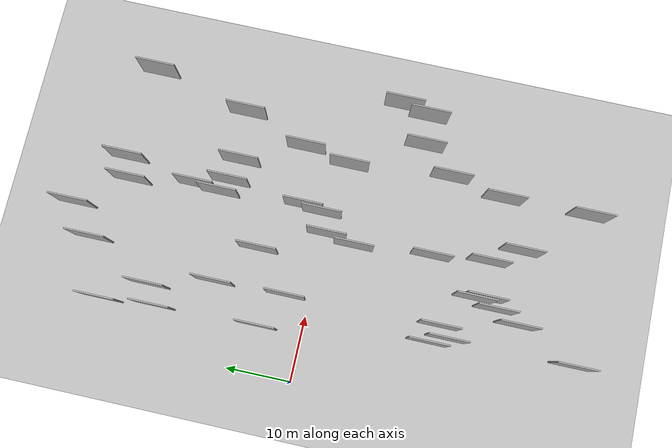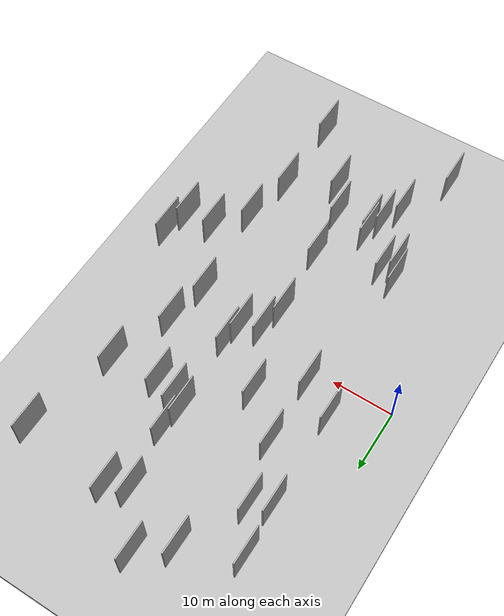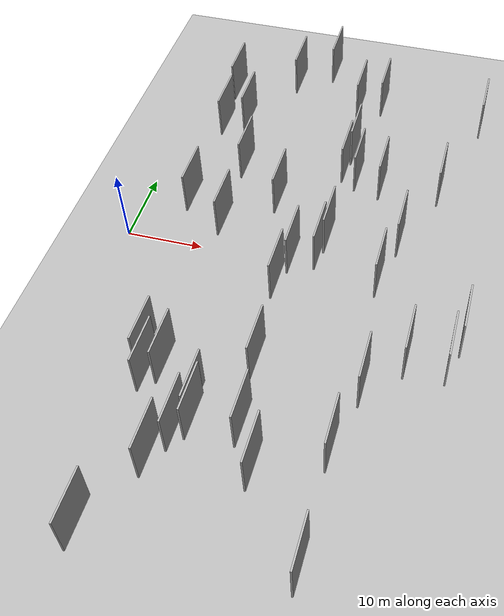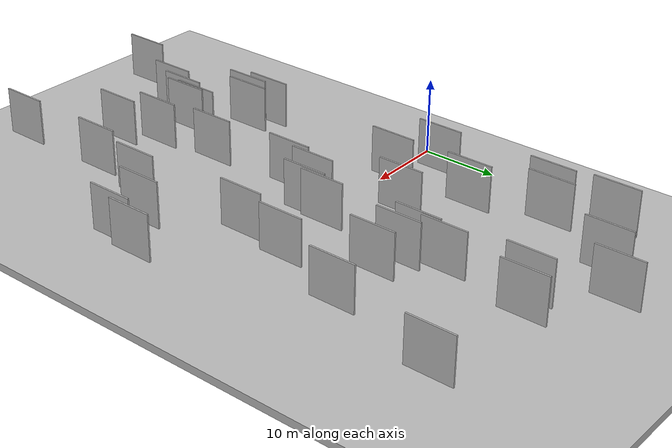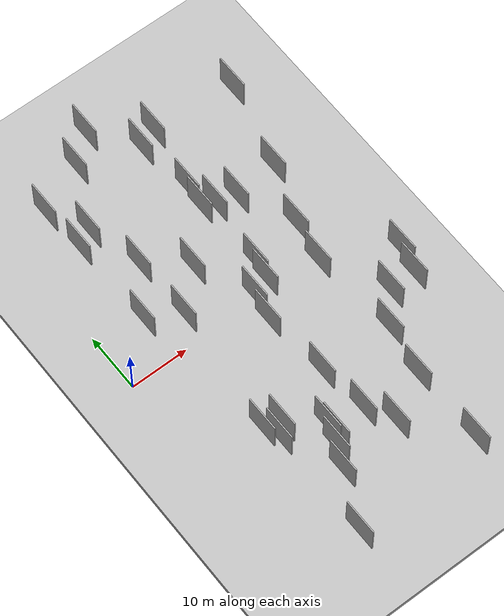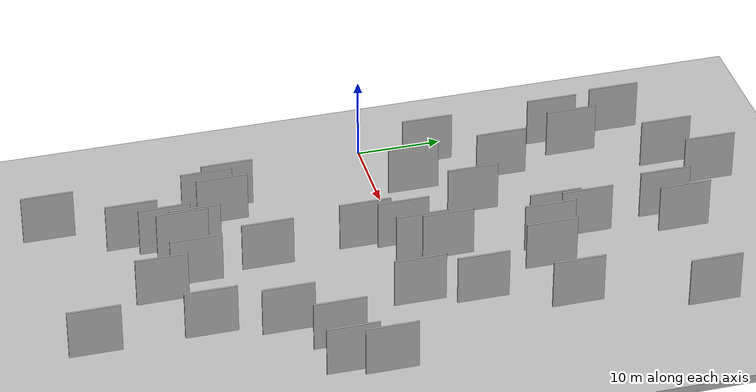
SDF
<?xml version="1.0" encoding="utf-8"?>

<sdf version="1.6">

   <world name="default">

      <gui fullscreen="0">

         <camera name="user_camera">

            <pose>-15 0 4.57585 0 0 0</pose>

            <view_controller>orbit</view_controller>

         </camera>

      </gui>

      <scene>

         <sky>

           <clouds>

             <speed>12</speed>

           </clouds>

         </sky>

         <ambient>0.4 0.4 0.4 1</ambient>

         <background>0.7 0.7 0.7 1</background>

         <shadows>1</shadows>

      </scene>

      <gravity>0 0 -9.8066</gravity>

      <magnetic_field>6e-06 2.3e-05 -4.2e-05</magnetic_field>

      <physics default="0" name="default_physics" type="ode">

         <ode>

            <solver>

               <type>quick</type>

               <iters>10</iters>

               <sor>1.0</sor>

               <use_dynamic_moi_rescaling>0</use_dynamic_moi_rescaling>

            </solver>

            <constraints>

               <cfm>0</cfm>

               <erp>0.2</erp>

               <contact_max_correcting_vel>100</contact_max_correcting_vel>

               <contact_surface_layer>0.001</contact_surface_layer>

            </constraints>

         </ode>

         <max_step_size>0.004</max_step_size>

         <real_time_factor>1</real_time_factor>

         <real_time_update_rate>250</real_time_update_rate>

      </physics>

      <light name="sun" type="directional">

         <cast_shadows>1</cast_shadows>

         <pose>0 0 10 0 0 0</pose>

         <diffuse>0.8 0.8 0.8 1</diffuse>

         <specular>0.2 0.2 0.2 1</specular>

         <attenuation>

            <range>1000</range>

            <constant>0.9</constant>

            <linear>0.01</linear>

            <quadratic>0.001</quadratic>

         </attenuation>

         <direction>-0.5 0.1 -0.9</direction>

      </light>

      <include>

         <name>ground_plane_1</name>

         <uri>model://HANNAS_ground_plane</uri>

         <pose>0 0 0  0 0 0</pose>

      </include>

      <include>

         <name>ground_plane_2</name>

         <uri>model://HANNAS_ground_plane</uri>

         <pose>100 0 0  0 0 0</pose>

      </include>

      <model name="HANNAS_wall_1">

         <static>1</static>

         <pose frame="">21.6564 -4.8141 2.5 0.000000 0.000000 1.570796</pose>

         <link name="link">

            <pose frame="">0 0 3.00 0 0 0</pose>

            <collision name="collision">

               <geometry>

                  <box>

                     <size>6.00 0.2 6.00</size>

                  </box>

               </geometry>

               <max_contacts>10</max_contacts>

               <surface>

                  <contact>

                     <ode/>

                  </contact>

                  <bounce/>

                  <friction>

                     <torsional>

                        <ode/>

                     </torsional>

                     <ode/>

                  </friction>

               </surface>

            </collision>

            <visual name="visual">

               <cast_shadows>0</cast_shadows>

               <geometry>

                  <box>

                     <size>6.00 0.2 6.00</size>

                  </box>

               </geometry>

               <material>

                  <script>

                     <uri>model://HANNAS_wall/materials/scripts</uri>

                     <uri>model://HANNAS_wall/materials/textures</uri>

                     <name>vrc/HANNAS_wall</name>

                  </script>

               </material>

            </visual>

            <self_collide>0</self_collide>

            <enable_wind>0</enable_wind>

            <kinematic>0</kinematic>

         </link>

      </model>

      <model name="HANNAS_wall_2">

         <static>1</static>

         <pose frame="">23.6089 -24.8356 2.5 0.000000 0.000000 1.570796</pose>

         <link name="link">

            <pose frame="">0 0 3.00 0 0 0</pose>

            <collision name="collision">

               <geometry>

                  <box>

                     <size>6.00 0.2 6.00</size>

                  </box>

               </geometry>

               <max_contacts>10</max_contacts>

               <surface>

                  <contact>

                     <ode/>

                  </contact>

                  <bounce/>

                  <friction>

                     <torsional>

                        <ode/>

                     </torsional>

                     <ode/>

                  </friction>

               </surface>

            </collision>

            <visual name="visual">

               <cast_shadows>0</cast_shadows>

               <geometry>

                  <box>

                     <size>6.00 0.2 6.00</size>

                  </box>

               </geometry>

               <material>

                  <script>

                     <uri>model://HANNAS_wall/materials/scripts</uri>

                     <uri>model://HANNAS_wall/materials/textures</uri>

                     <name>vrc/HANNAS_wall</name>

                  </script>

               </material>

            </visual>

            <self_collide>0</self_collide>

            <enable_wind>0</enable_wind>

            <kinematic>0</kinematic>

         </link>

      </model>

      <model name="HANNAS_wall_3">

         <static>1</static>

         <pose frame="">24.3874 30.1782 2.5 0.000000 0.000000 1.570796</pose>

         <link name="link">

            <pose frame="">0 0 3.00 0 0 0</pose>

            <collision name="collision">

               <geometry>

                  <box>

                     <size>6.00 0.2 6.00</size>

                  </box>

               </geometry>

               <max_contacts>10</max_contacts>

               <surface>

                  <contact>

                     <ode/>

                  </contact>

                  <bounce/>

                  <friction>

                     <torsional>

                        <ode/>

                     </torsional>

                     <ode/>

                  </friction>

               </surface>

            </collision>

            <visual name="visual">

               <cast_shadows>0</cast_shadows>

               <geometry>

                  <box>

                     <size>6.00 0.2 6.00</size>

                  </box>

               </geometry>

               <material>

                  <script>

                     <uri>model://HANNAS_wall/materials/scripts</uri>

                     <uri>model://HANNAS_wall/materials/textures</uri>

                     <name>vrc/HANNAS_wall</name>

                  </script>

               </material>

            </visual>

            <self_collide>0</self_collide>

            <enable_wind>0</enable_wind>

            <kinematic>0</kinematic>

         </link>

      </model>

      <model name="HANNAS_wall_4">

         <static>1</static>

         <pose frame="">11.1376 -39.4858 2.5 0.000000 0.000000 1.570796</pose>

         <link name="link">

            <pose frame="">0 0 3.00 0 0 0</pose>

            <collision name="collision">

               <geometry>

                  <box>

                     <size>6.00 0.2 6.00</size>

                  </box>

               </geometry>

               <max_contacts>10</max_contacts>

               <surface>

                  <contact>

                     <ode/>

                  </contact>

                  <bounce/>

                  <friction>

                     <torsional>

                        <ode/>

                     </torsional>

                     <ode/>

                  </friction>

               </surface>

            </collision>

            <visual name="visual">

               <cast_shadows>0</cast_shadows>

               <geometry>

                  <box>

                     <size>6.00 0.2 6.00</size>

                  </box>

               </geometry>

               <material>

                  <script>

                     <uri>model://HANNAS_wall/materials/scripts</uri>

                     <uri>model://HANNAS_wall/materials/textures</uri>

                     <name>vrc/HANNAS_wall</name>

                  </script>

               </material>

            </visual>

            <self_collide>0</self_collide>

            <enable_wind>0</enable_wind>

            <kinematic>0</kinematic>

         </link>

      </model>

      <model name="HANNAS_wall_5">

         <static>1</static>

         <pose frame="">12.3010 3.4274 2.5 0.000000 0.000000 1.570796</pose>

         <link name="link">

            <pose frame="">0 0 3.00 0 0 0</pose>

            <collision name="collision">

               <geometry>

                  <box>

                     <size>6.00 0.2 6.00</size>

                  </box>

               </geometry>

               <max_contacts>10</max_contacts>

               <surface>

                  <contact>

                     <ode/>

                  </contact>

                  <bounce/>

                  <friction>

                     <torsional>

                        <ode/>

                     </torsional>

                     <ode/>

                  </friction>

               </surface>

            </collision>

            <visual name="visual">

               <cast_shadows>0</cast_shadows>

               <geometry>

                  <box>

                     <size>6.00 0.2 6.00</size>

                  </box>

               </geometry>

               <material>

                  <script>

                     <uri>model://HANNAS_wall/materials/scripts</uri>

                     <uri>model://HANNAS_wall/materials/textures</uri>

                     <name>vrc/HANNAS_wall</name>

                  </script>

               </material>

            </visual>

            <self_collide>0</self_collide>

            <enable_wind>0</enable_wind>

            <kinematic>0</kinematic>

         </link>

      </model>

      <model name="HANNAS_wall_6">

         <static>1</static>

         <pose frame="">25.7499 20.3218 2.5 0.000000 0.000000 1.570796</pose>

         <link name="link">

            <pose frame="">0 0 3.00 0 0 0</pose>

            <collision name="collision">

               <geometry>

                  <box>

                     <size>6.00 0.2 6.00</size>

                  </box>

               </geometry>

               <max_contacts>10</max_contacts>

               <surface>

                  <contact>

                     <ode/>

                  </contact>

                  <bounce/>

                  <friction>

                     <torsional>

                        <ode/>

                     </torsional>

                     <ode/>

                  </friction>

               </surface>

            </collision>

            <visual name="visual">

               <cast_shadows>0</cast_shadows>

               <geometry>

                  <box>

                     <size>6.00 0.2 6.00</size>

                  </box>

               </geometry>

               <material>

                  <script>

                     <uri>model://HANNAS_wall/materials/scripts</uri>

                     <uri>model://HANNAS_wall/materials/textures</uri>

                     <name>vrc/HANNAS_wall</name>

                  </script>

               </material>

            </visual>

            <self_collide>0</self_collide>

            <enable_wind>0</enable_wind>

            <kinematic>0</kinematic>

         </link>

      </model>

      <model name="HANNAS_wall_7">

         <static>1</static>

         <pose frame="">30.7164 14.5984 2.5 0.000000 0.000000 1.570796</pose>

         <link name="link">

            <pose frame="">0 0 3.00 0 0 0</pose>

            <collision name="collision">

               <geometry>

                  <box>

                     <size>6.00 0.2 6.00</size>

                  </box>

               </geometry>

               <max_contacts>10</max_contacts>

               <surface>

                  <contact>

                     <ode/>

                  </contact>

                  <bounce/>

                  <friction>

                     <torsional>

                        <ode/>

                     </torsional>

                     <ode/>

                  </friction>

               </surface>

            </collision>

            <visual name="visual">

               <cast_shadows>0</cast_shadows>

               <geometry>

                  <box>

                     <size>6.00 0.2 6.00</size>

                  </box>

               </geometry>

               <material>

                  <script>

                     <uri>model://HANNAS_wall/materials/scripts</uri>

                     <uri>model://HANNAS_wall/materials/textures</uri>

                     <name>vrc/HANNAS_wall</name>

                  </script>

               </material>

            </visual>

            <self_collide>0</self_collide>

            <enable_wind>0</enable_wind>

            <kinematic>0</kinematic>

         </link>

      </model>

      <model name="HANNAS_wall_8">

         <static>1</static>

         <pose frame="">33.6135 -1.6067 2.5 0.000000 0.000000 1.570796</pose>

         <link name="link">

            <pose frame="">0 0 3.00 0 0 0</pose>

            <collision name="collision">

               <geometry>

                  <box>

                     <size>6.00 0.2 6.00</size>

                  </box>

               </geometry>

               <max_contacts>10</max_contacts>

               <surface>

                  <contact>

                     <ode/>

                  </contact>

                  <bounce/>

                  <friction>

                     <torsional>

                        <ode/>

                     </torsional>

                     <ode/>

                  </friction>

               </surface>

            </collision>

            <visual name="visual">

               <cast_shadows>0</cast_shadows>

               <geometry>

                  <box>

                     <size>6.00 0.2 6.00</size>

                  </box>

               </geometry>

               <material>

                  <script>

                     <uri>model://HANNAS_wall/materials/scripts</uri>

                     <uri>model://HANNAS_wall/materials/textures</uri>

                     <name>vrc/HANNAS_wall</name>

                  </script>

               </material>

            </visual>

            <self_collide>0</self_collide>

            <enable_wind>0</enable_wind>

            <kinematic>0</kinematic>

         </link>

      </model>

      <model name="HANNAS_wall_9">

         <static>1</static>

         <pose frame="">15.2111 -30.5434 2.5 0.000000 0.000000 1.570796</pose>

         <link name="link">

            <pose frame="">0 0 3.00 0 0 0</pose>

            <collision name="collision">

               <geometry>

                  <box>

                     <size>6.00 0.2 6.00</size>

                  </box>

               </geometry>

               <max_contacts>10</max_contacts>

               <surface>

                  <contact>

                     <ode/>

                  </contact>

                  <bounce/>

                  <friction>

                     <torsional>

                        <ode/>

                     </torsional>

                     <ode/>

                  </friction>

               </surface>

            </collision>

            <visual name="visual">

               <cast_shadows>0</cast_shadows>

               <geometry>

                  <box>

                     <size>6.00 0.2 6.00</size>

                  </box>

               </geometry>

               <material>

                  <script>

                     <uri>model://HANNAS_wall/materials/scripts</uri>

                     <uri>model://HANNAS_wall/materials/textures</uri>

                     <name>vrc/HANNAS_wall</name>

                  </script>

               </material>

            </visual>

            <self_collide>0</self_collide>

            <enable_wind>0</enable_wind>

            <kinematic>0</kinematic>

         </link>

      </model>

      <model name="HANNAS_wall_10">

         <static>1</static>

         <pose frame="">26.0335 3.7698 2.5 0.000000 0.000000 1.570796</pose>

         <link name="link">

            <pose frame="">0 0 3.00 0 0 0</pose>

            <collision name="collision">

               <geometry>

                  <box>

                     <size>6.00 0.2 6.00</size>

                  </box>

               </geometry>

               <max_contacts>10</max_contacts>

               <surface>

                  <contact>

                     <ode/>

                  </contact>

                  <bounce/>

                  <friction>

                     <torsional>

                        <ode/>

                     </torsional>

                     <ode/>

                  </friction>

               </surface>

            </collision>

            <visual name="visual">

               <cast_shadows>0</cast_shadows>

               <geometry>

                  <box>

                     <size>6.00 0.2 6.00</size>

                  </box>

               </geometry>

               <material>

                  <script>

                     <uri>model://HANNAS_wall/materials/scripts</uri>

                     <uri>model://HANNAS_wall/materials/textures</uri>

                     <name>vrc/HANNAS_wall</name>

                  </script>

               </material>

            </visual>

            <self_collide>0</self_collide>

            <enable_wind>0</enable_wind>

            <kinematic>0</kinematic>

         </link>

      </model>

      <model name="HANNAS_wall_11">

         <static>1</static>

         <pose frame="">38.3754 15.3484 2.5 0.000000 0.000000 1.570796</pose>

         <link name="link">

            <pose frame="">0 0 3.00 0 0 0</pose>

            <collision name="collision">

               <geometry>

                  <box>

                     <size>6.00 0.2 6.00</size>

                  </box>

               </geometry>

               <max_contacts>10</max_contacts>

               <surface>

                  <contact>

                     <ode/>

                  </contact>

                  <bounce/>

                  <friction>

                     <torsional>

                        <ode/>

                     </torsional>

                     <ode/>

                  </friction>

               </surface>

            </collision>

            <visual name="visual">

               <cast_shadows>0</cast_shadows>

               <geometry>

                  <box>

                     <size>6.00 0.2 6.00</size>

                  </box>

               </geometry>

               <material>

                  <script>

                     <uri>model://HANNAS_wall/materials/scripts</uri>

                     <uri>model://HANNAS_wall/materials/textures</uri>

                     <name>vrc/HANNAS_wall</name>

                  </script>

               </material>

            </visual>

            <self_collide>0</self_collide>

            <enable_wind>0</enable_wind>

            <kinematic>0</kinematic>

         </link>

      </model>

      <model name="HANNAS_wall_12">

         <static>1</static>

         <pose frame="">33.4478 -25.3198 2.5 0.000000 0.000000 1.570796</pose>

         <link name="link">

            <pose frame="">0 0 3.00 0 0 0</pose>

            <collision name="collision">

               <geometry>

                  <box>

                     <size>6.00 0.2 6.00</size>

                  </box>

               </geometry>

               <max_contacts>10</max_contacts>

               <surface>

                  <contact>

                     <ode/>

                  </contact>

                  <bounce/>

                  <friction>

                     <torsional>

                        <ode/>

                     </torsional>

                     <ode/>

                  </friction>

               </surface>

            </collision>

            <visual name="visual">

               <cast_shadows>0</cast_shadows>

               <geometry>

                  <box>

                     <size>6.00 0.2 6.00</size>

                  </box>

               </geometry>

               <material>

                  <script>

                     <uri>model://HANNAS_wall/materials/scripts</uri>

                     <uri>model://HANNAS_wall/materials/textures</uri>

                     <name>vrc/HANNAS_wall</name>

                  </script>

               </material>

            </visual>

            <self_collide>0</self_collide>

            <enable_wind>0</enable_wind>

            <kinematic>0</kinematic>

         </link>

      </model>

      <model name="HANNAS_wall_13">

         <static>1</static>

         <pose frame="">16.8244 -27.0574 2.5 0.000000 0.000000 1.570796</pose>

         <link name="link">

            <pose frame="">0 0 3.00 0 0 0</pose>

            <collision name="collision">

               <geometry>

                  <box>

                     <size>6.00 0.2 6.00</size>

                  </box>

               </geometry>

               <max_contacts>10</max_contacts>

               <surface>

                  <contact>

                     <ode/>

                  </contact>

                  <bounce/>

                  <friction>

                     <torsional>

                        <ode/>

                     </torsional>

                     <ode/>

                  </friction>

               </surface>

            </collision>

            <visual name="visual">

               <cast_shadows>0</cast_shadows>

               <geometry>

                  <box>

                     <size>6.00 0.2 6.00</size>

                  </box>

               </geometry>

               <material>

                  <script>

                     <uri>model://HANNAS_wall/materials/scripts</uri>

                     <uri>model://HANNAS_wall/materials/textures</uri>

                     <name>vrc/HANNAS_wall</name>

                  </script>

               </material>

            </visual>

            <self_collide>0</self_collide>

            <enable_wind>0</enable_wind>

            <kinematic>0</kinematic>

         </link>

      </model>

      <model name="HANNAS_wall_14">

         <static>1</static>

         <pose frame="">34.9005 5.3373 2.5 0.000000 0.000000 1.570796</pose>

         <link name="link">

            <pose frame="">0 0 3.00 0 0 0</pose>

            <collision name="collision">

               <geometry>

                  <box>

                     <size>6.00 0.2 6.00</size>

                  </box>

               </geometry>

               <max_contacts>10</max_contacts>

               <surface>

                  <contact>

                     <ode/>

                  </contact>

                  <bounce/>

                  <friction>

                     <torsional>

                        <ode/>

                     </torsional>

                     <ode/>

                  </friction>

               </surface>

            </collision>

            <visual name="visual">

               <cast_shadows>0</cast_shadows>

               <geometry>

                  <box>

                     <size>6.00 0.2 6.00</size>

                  </box>

               </geometry>

               <material>

                  <script>

                     <uri>model://HANNAS_wall/materials/scripts</uri>

                     <uri>model://HANNAS_wall/materials/textures</uri>

                     <name>vrc/HANNAS_wall</name>

                  </script>

               </material>

            </visual>

            <self_collide>0</self_collide>

            <enable_wind>0</enable_wind>

            <kinematic>0</kinematic>

         </link>

      </model>

      <model name="HANNAS_wall_15">

         <static>1</static>

         <pose frame="">35.0174 -16.9787 2.5 0.000000 0.000000 1.570796</pose>

         <link name="link">

            <pose frame="">0 0 3.00 0 0 0</pose>

            <collision name="collision">

               <geometry>

                  <box>

                     <size>6.00 0.2 6.00</size>

                  </box>

               </geometry>

               <max_contacts>10</max_contacts>

               <surface>

                  <contact>

                     <ode/>

                  </contact>

                  <bounce/>

                  <friction>

                     <torsional>

                        <ode/>

                     </torsional>

                     <ode/>

                  </friction>

               </surface>

            </collision>

            <visual name="visual">

               <cast_shadows>0</cast_shadows>

               <geometry>

                  <box>

                     <size>6.00 0.2 6.00</size>

                  </box>

               </geometry>

               <material>

                  <script>

                     <uri>model://HANNAS_wall/materials/scripts</uri>

                     <uri>model://HANNAS_wall/materials/textures</uri>

                     <name>vrc/HANNAS_wall</name>

                  </script>

               </material>

            </visual>

            <self_collide>0</self_collide>

            <enable_wind>0</enable_wind>

            <kinematic>0</kinematic>

         </link>

      </model>

      <model name="HANNAS_wall_16">

         <static>1</static>

         <pose frame="">7.0432 6.5565 2.5 0.000000 0.000000 1.570796</pose>

         <link name="link">

            <pose frame="">0 0 3.00 0 0 0</pose>

            <collision name="collision">

               <geometry>

                  <box>

                     <size>6.00 0.2 6.00</size>

                  </box>

               </geometry>

               <max_contacts>10</max_contacts>

               <surface>

                  <contact>

                     <ode/>

                  </contact>

                  <bounce/>

                  <friction>

                     <torsional>

                        <ode/>

                     </torsional>

                     <ode/>

                  </friction>

               </surface>

            </collision>

            <visual name="visual">

               <cast_shadows>0</cast_shadows>

               <geometry>

                  <box>

                     <size>6.00 0.2 6.00</size>

                  </box>

               </geometry>

               <material>

                  <script>

                     <uri>model://HANNAS_wall/materials/scripts</uri>

                     <uri>model://HANNAS_wall/materials/textures</uri>

                     <name>vrc/HANNAS_wall</name>

                  </script>

               </material>

            </visual>

            <self_collide>0</self_collide>

            <enable_wind>0</enable_wind>

            <kinematic>0</kinematic>

         </link>

      </model>

      <model name="HANNAS_wall_17">

         <static>1</static>

         <pose frame="">6.6634 21.9982 2.5 0.000000 0.000000 1.570796</pose>

         <link name="link">

            <pose frame="">0 0 3.00 0 0 0</pose>

            <collision name="collision">

               <geometry>

                  <box>

                     <size>6.00 0.2 6.00</size>

                  </box>

               </geometry>

               <max_contacts>10</max_contacts>

               <surface>

                  <contact>

                     <ode/>

                  </contact>

                  <bounce/>

                  <friction>

                     <torsional>

                        <ode/>

                     </torsional>

                     <ode/>

                  </friction>

               </surface>

            </collision>

            <visual name="visual">

               <cast_shadows>0</cast_shadows>

               <geometry>

                  <box>

                     <size>6.00 0.2 6.00</size>

                  </box>

               </geometry>

               <material>

                  <script>

                     <uri>model://HANNAS_wall/materials/scripts</uri>

                     <uri>model://HANNAS_wall/materials/textures</uri>

                     <name>vrc/HANNAS_wall</name>

                  </script>

               </material>

            </visual>

            <self_collide>0</self_collide>

            <enable_wind>0</enable_wind>

            <kinematic>0</kinematic>

         </link>

      </model>

      <model name="HANNAS_wall_18">

         <static>1</static>

         <pose frame="">33.5962 -38.3231 2.5 0.000000 0.000000 1.570796</pose>

         <link name="link">

            <pose frame="">0 0 3.00 0 0 0</pose>

            <collision name="collision">

               <geometry>

                  <box>

                     <size>6.00 0.2 6.00</size>

                  </box>

               </geometry>

               <max_contacts>10</max_contacts>

               <surface>

                  <contact>

                     <ode/>

                  </contact>

                  <bounce/>

                  <friction>

                     <torsional>

                        <ode/>

                     </torsional>

                     <ode/>

                  </friction>

               </surface>

            </collision>

            <visual name="visual">

               <cast_shadows>0</cast_shadows>

               <geometry>

                  <box>

                     <size>6.00 0.2 6.00</size>

                  </box>

               </geometry>

               <material>

                  <script>

                     <uri>model://HANNAS_wall/materials/scripts</uri>

                     <uri>model://HANNAS_wall/materials/textures</uri>

                     <name>vrc/HANNAS_wall</name>

                  </script>

               </material>

            </visual>

            <self_collide>0</self_collide>

            <enable_wind>0</enable_wind>

            <kinematic>0</kinematic>

         </link>

      </model>

      <model name="HANNAS_wall_19">

         <static>1</static>

         <pose frame="">12.0188 14.1910 2.5 0.000000 0.000000 1.570796</pose>

         <link name="link">

            <pose frame="">0 0 3.00 0 0 0</pose>

            <collision name="collision">

               <geometry>

                  <box>

                     <size>6.00 0.2 6.00</size>

                  </box>

               </geometry>

               <max_contacts>10</max_contacts>

               <surface>

                  <contact>

                     <ode/>

                  </contact>

                  <bounce/>

                  <friction>

                     <torsional>

                        <ode/>

                     </torsional>

                     <ode/>

                  </friction>

               </surface>

            </collision>

            <visual name="visual">

               <cast_shadows>0</cast_shadows>

               <geometry>

                  <box>

                     <size>6.00 0.2 6.00</size>

                  </box>

               </geometry>

               <material>

                  <script>

                     <uri>model://HANNAS_wall/materials/scripts</uri>

                     <uri>model://HANNAS_wall/materials/textures</uri>

                     <name>vrc/HANNAS_wall</name>

                  </script>

               </material>

            </visual>

            <self_collide>0</self_collide>

            <enable_wind>0</enable_wind>

            <kinematic>0</kinematic>

         </link>

      </model>

      <model name="HANNAS_wall_20">

         <static>1</static>

         <pose frame="">22.4846 -0.5427 2.5 0.000000 0.000000 1.570796</pose>

         <link name="link">

            <pose frame="">0 0 3.00 0 0 0</pose>

            <collision name="collision">

               <geometry>

                  <box>

                     <size>6.00 0.2 6.00</size>

                  </box>

               </geometry>

               <max_contacts>10</max_contacts>

               <surface>

                  <contact>

                     <ode/>

                  </contact>

                  <bounce/>

                  <friction>

                     <torsional>

                        <ode/>

                     </torsional>

                     <ode/>

                  </friction>

               </surface>

            </collision>

            <visual name="visual">

               <cast_shadows>0</cast_shadows>

               <geometry>

                  <box>

                     <size>6.00 0.2 6.00</size>

                  </box>

               </geometry>

               <material>

                  <script>

                     <uri>model://HANNAS_wall/materials/scripts</uri>

                     <uri>model://HANNAS_wall/materials/textures</uri>

                     <name>vrc/HANNAS_wall</name>

                  </script>

               </material>

            </visual>

            <self_collide>0</self_collide>

            <enable_wind>0</enable_wind>

            <kinematic>0</kinematic>

         </link>

      </model>

      <model name="HANNAS_wall_21">

         <static>1</static>

         <pose frame="">18.1652 8.9519 2.5 0.000000 0.000000 1.570796</pose>

         <link name="link">

            <pose frame="">0 0 3.00 0 0 0</pose>

            <collision name="collision">

               <geometry>

                  <box>

                     <size>6.00 0.2 6.00</size>

                  </box>

               </geometry>

               <max_contacts>10</max_contacts>

               <surface>

                  <contact>

                     <ode/>

                  </contact>

                  <bounce/>

                  <friction>

                     <torsional>

                        <ode/>

                     </torsional>

                     <ode/>

                  </friction>

               </surface>

            </collision>

            <visual name="visual">

               <cast_shadows>0</cast_shadows>

               <geometry>

                  <box>

                     <size>6.00 0.2 6.00</size>

                  </box>

               </geometry>

               <material>

                  <script>

                     <uri>model://HANNAS_wall/materials/scripts</uri>

                     <uri>model://HANNAS_wall/materials/textures</uri>

                     <name>vrc/HANNAS_wall</name>

                  </script>

               </material>

            </visual>

            <self_collide>0</self_collide>

            <enable_wind>0</enable_wind>

            <kinematic>0</kinematic>

         </link>

      </model>

      <model name="HANNAS_wall_22">

         <static>1</static>

         <pose frame="">22.6454 -16.4097 2.5 0.000000 0.000000 1.570796</pose>

         <link name="link">

            <pose frame="">0 0 3.00 0 0 0</pose>

            <collision name="collision">

               <geometry>

                  <box>

                     <size>6.00 0.2 6.00</size>

                  </box>

               </geometry>

               <max_contacts>10</max_contacts>

               <surface>

                  <contact>

                     <ode/>

                  </contact>

                  <bounce/>

                  <friction>

                     <torsional>

                        <ode/>

                     </torsional>

                     <ode/>

                  </friction>

               </surface>

            </collision>

            <visual name="visual">

               <cast_shadows>0</cast_shadows>

               <geometry>

                  <box>

                     <size>6.00 0.2 6.00</size>

                  </box>

               </geometry>

               <material>

                  <script>

                     <uri>model://HANNAS_wall/materials/scripts</uri>

                     <uri>model://HANNAS_wall/materials/textures</uri>

                     <name>vrc/HANNAS_wall</name>

                  </script>

               </material>

            </visual>

            <self_collide>0</self_collide>

            <enable_wind>0</enable_wind>

            <kinematic>0</kinematic>

         </link>

      </model>

      <model name="HANNAS_wall_23">

         <static>1</static>

         <pose frame="">39.0228 -12.1820 2.5 0.000000 0.000000 1.570796</pose>

         <link name="link">

            <pose frame="">0 0 3.00 0 0 0</pose>

            <collision name="collision">

               <geometry>

                  <box>

                     <size>6.00 0.2 6.00</size>

                  </box>

               </geometry>

               <max_contacts>10</max_contacts>

               <surface>

                  <contact>

                     <ode/>

                  </contact>

                  <bounce/>

                  <friction>

                     <torsional>

                        <ode/>

                     </torsional>

                     <ode/>

                  </friction>

               </surface>

            </collision>

            <visual name="visual">

               <cast_shadows>0</cast_shadows>

               <geometry>

                  <box>

                     <size>6.00 0.2 6.00</size>

                  </box>

               </geometry>

               <material>

                  <script>

                     <uri>model://HANNAS_wall/materials/scripts</uri>

                     <uri>model://HANNAS_wall/materials/textures</uri>

                     <name>vrc/HANNAS_wall</name>

                  </script>

               </material>

            </visual>

            <self_collide>0</self_collide>

            <enable_wind>0</enable_wind>

            <kinematic>0</kinematic>

         </link>

      </model>

      <model name="HANNAS_wall_24">

         <static>1</static>

         <pose frame="">44.7174 -7.8020 2.5 0.000000 0.000000 1.570796</pose>

         <link name="link">

            <pose frame="">0 0 3.00 0 0 0</pose>

            <collision name="collision">

               <geometry>

                  <box>

                     <size>6.00 0.2 6.00</size>

                  </box>

               </geometry>

               <max_contacts>10</max_contacts>

               <surface>

                  <contact>

                     <ode/>

                  </contact>

                  <bounce/>

                  <friction>

                     <torsional>

                        <ode/>

                     </torsional>

                     <ode/>

                  </friction>

               </surface>

            </collision>

            <visual name="visual">

               <cast_shadows>0</cast_shadows>

               <geometry>

                  <box>

                     <size>6.00 0.2 6.00</size>

                  </box>

               </geometry>

               <material>

                  <script>

                     <uri>model://HANNAS_wall/materials/scripts</uri>

                     <uri>model://HANNAS_wall/materials/textures</uri>

                     <name>vrc/HANNAS_wall</name>

                  </script>

               </material>

            </visual>

            <self_collide>0</self_collide>

            <enable_wind>0</enable_wind>

            <kinematic>0</kinematic>

         </link>

      </model>

      <model name="HANNAS_wall_25">

         <static>1</static>

         <pose frame="">25.5493 0.8286 2.5 0.000000 0.000000 1.570796</pose>

         <link name="link">

            <pose frame="">0 0 3.00 0 0 0</pose>

            <collision name="collision">

               <geometry>

                  <box>

                     <size>6.00 0.2 6.00</size>

                  </box>

               </geometry>

               <max_contacts>10</max_contacts>

               <surface>

                  <contact>

                     <ode/>

                  </contact>

                  <bounce/>

                  <friction>

                     <torsional>

                        <ode/>

                     </torsional>

                     <ode/>

                  </friction>

               </surface>

            </collision>

            <visual name="visual">

               <cast_shadows>0</cast_shadows>

               <geometry>

                  <box>

                     <size>6.00 0.2 6.00</size>

                  </box>

               </geometry>

               <material>

                  <script>

                     <uri>model://HANNAS_wall/materials/scripts</uri>

                     <uri>model://HANNAS_wall/materials/textures</uri>

                     <name>vrc/HANNAS_wall</name>

                  </script>

               </material>

            </visual>

            <self_collide>0</self_collide>

            <enable_wind>0</enable_wind>

            <kinematic>0</kinematic>

         </link>

      </model>

      <model name="HANNAS_wall_26">

         <static>1</static>

         <pose frame="">27.6216 31.4727 2.5 0.000000 0.000000 1.570796</pose>

         <link name="link">

            <pose frame="">0 0 3.00 0 0 0</pose>

            <collision name="collision">

               <geometry>

                  <box>

                     <size>6.00 0.2 6.00</size>

                  </box>

               </geometry>

               <max_contacts>10</max_contacts>

               <surface>

                  <contact>

                     <ode/>

                  </contact>

                  <bounce/>

                  <friction>

                     <torsional>

                        <ode/>

                     </torsional>

                     <ode/>

                  </friction>

               </surface>

            </collision>

            <visual name="visual">

               <cast_shadows>0</cast_shadows>

               <geometry>

                  <box>

                     <size>6.00 0.2 6.00</size>

                  </box>

               </geometry>

               <material>

                  <script>

                     <uri>model://HANNAS_wall/materials/scripts</uri>

                     <uri>model://HANNAS_wall/materials/textures</uri>

                     <name>vrc/HANNAS_wall</name>

                  </script>

               </material>

            </visual>

            <self_collide>0</self_collide>

            <enable_wind>0</enable_wind>

            <kinematic>0</kinematic>

         </link>

      </model>

      <model name="HANNAS_wall_27">

         <static>1</static>

         <pose frame="">19.1207 37.4407 2.5 0.000000 0.000000 1.570796</pose>

         <link name="link">

            <pose frame="">0 0 3.00 0 0 0</pose>

            <collision name="collision">

               <geometry>

                  <box>

                     <size>6.00 0.2 6.00</size>

                  </box>

               </geometry>

               <max_contacts>10</max_contacts>

               <surface>

                  <contact>

                     <ode/>

                  </contact>

                  <bounce/>

                  <friction>

                     <torsional>

                        <ode/>

                     </torsional>

                     <ode/>

                  </friction>

               </surface>

            </collision>

            <visual name="visual">

               <cast_shadows>0</cast_shadows>

               <geometry>

                  <box>

                     <size>6.00 0.2 6.00</size>

                  </box>

               </geometry>

               <material>

                  <script>

                     <uri>model://HANNAS_wall/materials/scripts</uri>

                     <uri>model://HANNAS_wall/materials/textures</uri>

                     <name>vrc/HANNAS_wall</name>

                  </script>

               </material>

            </visual>

            <self_collide>0</self_collide>

            <enable_wind>0</enable_wind>

            <kinematic>0</kinematic>

         </link>

      </model>

      <model name="HANNAS_wall_28">

         <static>1</static>

         <pose frame="">18.1913 -25.2845 2.5 0.000000 0.000000 1.570796</pose>

         <link name="link">

            <pose frame="">0 0 3.00 0 0 0</pose>

            <collision name="collision">

               <geometry>

                  <box>

                     <size>6.00 0.2 6.00</size>

                  </box>

               </geometry>

               <max_contacts>10</max_contacts>

               <surface>

                  <contact>

                     <ode/>

                  </contact>

                  <bounce/>

                  <friction>

                     <torsional>

                        <ode/>

                     </torsional>

                     <ode/>

                  </friction>

               </surface>

            </collision>

            <visual name="visual">

               <cast_shadows>0</cast_shadows>

               <geometry>

                  <box>

                     <size>6.00 0.2 6.00</size>

                  </box>

               </geometry>

               <material>

                  <script>

                     <uri>model://HANNAS_wall/materials/scripts</uri>

                     <uri>model://HANNAS_wall/materials/textures</uri>

                     <name>vrc/HANNAS_wall</name>

                  </script>

               </material>

            </visual>

            <self_collide>0</self_collide>

            <enable_wind>0</enable_wind>

            <kinematic>0</kinematic>

         </link>

      </model>

      <model name="HANNAS_wall_29">

         <static>1</static>

         <pose frame="">27.2976 15.4693 2.5 0.000000 0.000000 1.570796</pose>

         <link name="link">

            <pose frame="">0 0 3.00 0 0 0</pose>

            <collision name="collision">

               <geometry>

                  <box>

                     <size>6.00 0.2 6.00</size>

                  </box>

               </geometry>

               <max_contacts>10</max_contacts>

               <surface>

                  <contact>

                     <ode/>

                  </contact>

                  <bounce/>

                  <friction>

                     <torsional>

                        <ode/>

                     </torsional>

                     <ode/>

                  </friction>

               </surface>

            </collision>

            <visual name="visual">

               <cast_shadows>0</cast_shadows>

               <geometry>

                  <box>

                     <size>6.00 0.2 6.00</size>

                  </box>

               </geometry>

               <material>

                  <script>

                     <uri>model://HANNAS_wall/materials/scripts</uri>

                     <uri>model://HANNAS_wall/materials/textures</uri>

                     <name>vrc/HANNAS_wall</name>

                  </script>

               </material>

            </visual>

            <self_collide>0</self_collide>

            <enable_wind>0</enable_wind>

            <kinematic>0</kinematic>

         </link>

      </model>

      <model name="HANNAS_wall_30">

         <static>1</static>

         <pose frame="">25.3436 16.6248 2.5 0.000000 0.000000 1.570796</pose>

         <link name="link">

            <pose frame="">0 0 3.00 0 0 0</pose>

            <collision name="collision">

               <geometry>

                  <box>

                     <size>6.00 0.2 6.00</size>

                  </box>

               </geometry>

               <max_contacts>10</max_contacts>

               <surface>

                  <contact>

                     <ode/>

                  </contact>

                  <bounce/>

                  <friction>

                     <torsional>

                        <ode/>

                     </torsional>

                     <ode/>

                  </friction>

               </surface>

            </collision>

            <visual name="visual">

               <cast_shadows>0</cast_shadows>

               <geometry>

                  <box>

                     <size>6.00 0.2 6.00</size>

                  </box>

               </geometry>

               <material>

                  <script>

                     <uri>model://HANNAS_wall/materials/scripts</uri>

                     <uri>model://HANNAS_wall/materials/textures</uri>

                     <name>vrc/HANNAS_wall</name>

                  </script>

               </material>

            </visual>

            <self_collide>0</self_collide>

            <enable_wind>0</enable_wind>

            <kinematic>0</kinematic>

         </link>

      </model>

      <model name="HANNAS_wall_31">

         <static>1</static>

         <pose frame="">41.9429 30.1540 2.5 0.000000 0.000000 1.570796</pose>

         <link name="link">

            <pose frame="">0 0 3.00 0 0 0</pose>

            <collision name="collision">

               <geometry>

                  <box>

                     <size>6.00 0.2 6.00</size>

                  </box>

               </geometry>

               <max_contacts>10</max_contacts>

               <surface>

                  <contact>

                     <ode/>

                  </contact>

                  <bounce/>

                  <friction>

                     <torsional>

                        <ode/>

                     </torsional>

                     <ode/>

                  </friction>

               </surface>

            </collision>

            <visual name="visual">

               <cast_shadows>0</cast_shadows>

               <geometry>

                  <box>

                     <size>6.00 0.2 6.00</size>

                  </box>

               </geometry>

               <material>

                  <script>

                     <uri>model://HANNAS_wall/materials/scripts</uri>

                     <uri>model://HANNAS_wall/materials/textures</uri>

                     <name>vrc/HANNAS_wall</name>

                  </script>

               </material>

            </visual>

            <self_collide>0</self_collide>

            <enable_wind>0</enable_wind>

            <kinematic>0</kinematic>

         </link>

      </model>

      <model name="HANNAS_wall_32">

         <static>1</static>

         <pose frame="">14.5074 33.6364 2.5 0.000000 0.000000 1.570796</pose>

         <link name="link">

            <pose frame="">0 0 3.00 0 0 0</pose>

            <collision name="collision">

               <geometry>

                  <box>

                     <size>6.00 0.2 6.00</size>

                  </box>

               </geometry>

               <max_contacts>10</max_contacts>

               <surface>

                  <contact>

                     <ode/>

                  </contact>

                  <bounce/>

                  <friction>

                     <torsional>

                        <ode/>

                     </torsional>

                     <ode/>

                  </friction>

               </surface>

            </collision>

            <visual name="visual">

               <cast_shadows>0</cast_shadows>

               <geometry>

                  <box>

                     <size>6.00 0.2 6.00</size>

                  </box>

               </geometry>

               <material>

                  <script>

                     <uri>model://HANNAS_wall/materials/scripts</uri>

                     <uri>model://HANNAS_wall/materials/textures</uri>

                     <name>vrc/HANNAS_wall</name>

                  </script>

               </material>

            </visual>

            <self_collide>0</self_collide>

            <enable_wind>0</enable_wind>

            <kinematic>0</kinematic>

         </link>

      </model>

      <model name="HANNAS_wall_33">

         <static>1</static>

         <pose frame="">11.1427 -20.9336 2.5 0.000000 0.000000 1.570796</pose>

         <link name="link">

            <pose frame="">0 0 3.00 0 0 0</pose>

            <collision name="collision">

               <geometry>

                  <box>

                     <size>6.00 0.2 6.00</size>

                  </box>

               </geometry>

               <max_contacts>10</max_contacts>

               <surface>

                  <contact>

                     <ode/>

                  </contact>

                  <bounce/>

                  <friction>

                     <torsional>

                        <ode/>

                     </torsional>

                     <ode/>

                  </friction>

               </surface>

            </collision>

            <visual name="visual">

               <cast_shadows>0</cast_shadows>

               <geometry>

                  <box>

                     <size>6.00 0.2 6.00</size>

                  </box>

               </geometry>

               <material>

                  <script>

                     <uri>model://HANNAS_wall/materials/scripts</uri>

                     <uri>model://HANNAS_wall/materials/textures</uri>

                     <name>vrc/HANNAS_wall</name>

                  </script>

               </material>

            </visual>

            <self_collide>0</self_collide>

            <enable_wind>0</enable_wind>

            <kinematic>0</kinematic>

         </link>

      </model>

      <model name="HANNAS_wall_34">

         <static>1</static>

         <pose frame="">26.1523 -29.3011 2.5 0.000000 0.000000 1.570796</pose>

         <link name="link">

            <pose frame="">0 0 3.00 0 0 0</pose>

            <collision name="collision">

               <geometry>

                  <box>

                     <size>6.00 0.2 6.00</size>

                  </box>

               </geometry>

               <max_contacts>10</max_contacts>

               <surface>

                  <contact>

                     <ode/>

                  </contact>

                  <bounce/>

                  <friction>

                     <torsional>

                        <ode/>

                     </torsional>

                     <ode/>

                  </friction>

               </surface>

            </collision>

            <visual name="visual">

               <cast_shadows>0</cast_shadows>

               <geometry>

                  <box>

                     <size>6.00 0.2 6.00</size>

                  </box>

               </geometry>

               <material>

                  <script>

                     <uri>model://HANNAS_wall/materials/scripts</uri>

                     <uri>model://HANNAS_wall/materials/textures</uri>

                     <name>vrc/HANNAS_wall</name>

                  </script>

               </material>

            </visual>

            <self_collide>0</self_collide>

            <enable_wind>0</enable_wind>

            <kinematic>0</kinematic>

         </link>

      </model>

      <model name="HANNAS_wall_35">

         <static>1</static>

         <pose frame="">12.7742 -19.4776 2.5 0.000000 0.000000 1.570796</pose>

         <link name="link">

            <pose frame="">0 0 3.00 0 0 0</pose>

            <collision name="collision">

               <geometry>

                  <box>

                     <size>6.00 0.2 6.00</size>

                  </box>

               </geometry>

               <max_contacts>10</max_contacts>

               <surface>

                  <contact>

                     <ode/>

                  </contact>

                  <bounce/>

                  <friction>

                     <torsional>

                        <ode/>

                     </torsional>

                     <ode/>

                  </friction>

               </surface>

            </collision>

            <visual name="visual">

               <cast_shadows>0</cast_shadows>

               <geometry>

                  <box>

                     <size>6.00 0.2 6.00</size>

                  </box>

               </geometry>

               <material>

                  <script>

                     <uri>model://HANNAS_wall/materials/scripts</uri>

                     <uri>model://HANNAS_wall/materials/textures</uri>

                     <name>vrc/HANNAS_wall</name>

                  </script>

               </material>

            </visual>

            <self_collide>0</self_collide>

            <enable_wind>0</enable_wind>

            <kinematic>0</kinematic>

         </link>

      </model>

      <model name="HANNAS_wall_36">

         <static>1</static>

         <pose frame="">10.0520 -18.3025 2.5 0.000000 0.000000 1.570796</pose>

         <link name="link">

            <pose frame="">0 0 3.00 0 0 0</pose>

            <collision name="collision">

               <geometry>

                  <box>

                     <size>6.00 0.2 6.00</size>

                  </box>

               </geometry>

               <max_contacts>10</max_contacts>

               <surface>

                  <contact>

                     <ode/>

                  </contact>

                  <bounce/>

                  <friction>

                     <torsional>

                        <ode/>

                     </torsional>

                     <ode/>

                  </friction>

               </surface>

            </collision>

            <visual name="visual">

               <cast_shadows>0</cast_shadows>

               <geometry>

                  <box>

                     <size>6.00 0.2 6.00</size>

                  </box>

               </geometry>

               <material>

                  <script>

                     <uri>model://HANNAS_wall/materials/scripts</uri>

                     <uri>model://HANNAS_wall/materials/textures</uri>

                     <name>vrc/HANNAS_wall</name>

                  </script>

               </material>

            </visual>

            <self_collide>0</self_collide>

            <enable_wind>0</enable_wind>

            <kinematic>0</kinematic>

         </link>

      </model>

      <model name="HANNAS_wall_37">

         <static>1</static>

         <pose frame="">17.8450 -23.7618 2.5 0.000000 0.000000 1.570796</pose>

         <link name="link">

            <pose frame="">0 0 3.00 0 0 0</pose>

            <collision name="collision">

               <geometry>

                  <box>

                     <size>6.00 0.2 6.00</size>

                  </box>

               </geometry>

               <max_contacts>10</max_contacts>

               <surface>

                  <contact>

                     <ode/>

                  </contact>

                  <bounce/>

                  <friction>

                     <torsional>

                        <ode/>

                     </torsional>

                     <ode/>

                  </friction>

               </surface>

            </collision>

            <visual name="visual">

               <cast_shadows>0</cast_shadows>

               <geometry>

                  <box>

                     <size>6.00 0.2 6.00</size>

                  </box>

               </geometry>

               <material>

                  <script>

                     <uri>model://HANNAS_wall/materials/scripts</uri>

                     <uri>model://HANNAS_wall/materials/textures</uri>

                     <name>vrc/HANNAS_wall</name>

                  </script>

               </material>

            </visual>

            <self_collide>0</self_collide>

            <enable_wind>0</enable_wind>

            <kinematic>0</kinematic>

         </link>

      </model>

      <model name="HANNAS_wall_38">

         <static>1</static>

         <pose frame="">6.0754 29.8785 2.5 0.000000 0.000000 1.570796</pose>

         <link name="link">

            <pose frame="">0 0 3.00 0 0 0</pose>

            <collision name="collision">

               <geometry>

                  <box>

                     <size>6.00 0.2 6.00</size>

                  </box>

               </geometry>

               <max_contacts>10</max_contacts>

               <surface>

                  <contact>

                     <ode/>

                  </contact>

                  <bounce/>

                  <friction>

                     <torsional>

                        <ode/>

                     </torsional>

                     <ode/>

                  </friction>

               </surface>

            </collision>

            <visual name="visual">

               <cast_shadows>0</cast_shadows>

               <geometry>

                  <box>

                     <size>6.00 0.2 6.00</size>

                  </box>

               </geometry>

               <material>

                  <script>

                     <uri>model://HANNAS_wall/materials/scripts</uri>

                     <uri>model://HANNAS_wall/materials/textures</uri>

                     <name>vrc/HANNAS_wall</name>

                  </script>

               </material>

            </visual>

            <self_collide>0</self_collide>

            <enable_wind>0</enable_wind>

            <kinematic>0</kinematic>

         </link>

      </model>

      <model name="HANNAS_wall_39">

         <static>1</static>

         <pose frame="">9.5306 23.5429 2.5 0.000000 0.000000 1.570796</pose>

         <link name="link">

            <pose frame="">0 0 3.00 0 0 0</pose>

            <collision name="collision">

               <geometry>

                  <box>

                     <size>6.00 0.2 6.00</size>

                  </box>

               </geometry>

               <max_contacts>10</max_contacts>

               <surface>

                  <contact>

                     <ode/>

                  </contact>

                  <bounce/>

                  <friction>

                     <torsional>

                        <ode/>

                     </torsional>

                     <ode/>

                  </friction>

               </surface>

            </collision>

            <visual name="visual">

               <cast_shadows>0</cast_shadows>

               <geometry>

                  <box>

                     <size>6.00 0.2 6.00</size>

                  </box>

               </geometry>

               <material>

                  <script>

                     <uri>model://HANNAS_wall/materials/scripts</uri>

                     <uri>model://HANNAS_wall/materials/textures</uri>

                     <name>vrc/HANNAS_wall</name>

                  </script>

               </material>

            </visual>

            <self_collide>0</self_collide>

            <enable_wind>0</enable_wind>

            <kinematic>0</kinematic>

         </link>

      </model>

      <model name="HANNAS_wall_40">

         <static>1</static>

         <pose frame="">43.6938 -11.8852 2.5 0.000000 0.000000 1.570796</pose>

         <link name="link">

            <pose frame="">0 0 3.00 0 0 0</pose>

            <collision name="collision">

               <geometry>

                  <box>

                     <size>6.00 0.2 6.00</size>

                  </box>

               </geometry>

               <max_contacts>10</max_contacts>

               <surface>

                  <contact>

                     <ode/>

                  </contact>

                  <bounce/>

                  <friction>

                     <torsional>

                        <ode/>

                     </torsional>

                     <ode/>

                  </friction>

               </surface>

            </collision>

            <visual name="visual">

               <cast_shadows>0</cast_shadows>

               <geometry>

                  <box>

                     <size>6.00 0.2 6.00</size>

                  </box>

               </geometry>

               <material>

                  <script>

                     <uri>model://HANNAS_wall/materials/scripts</uri>

                     <uri>model://HANNAS_wall/materials/textures</uri>

                     <name>vrc/HANNAS_wall</name>

                  </script>

               </material>

            </visual>

            <self_collide>0</self_collide>

            <enable_wind>0</enable_wind>

            <kinematic>0</kinematic>

         </link>

      </model>

   </world>

</sdf>
